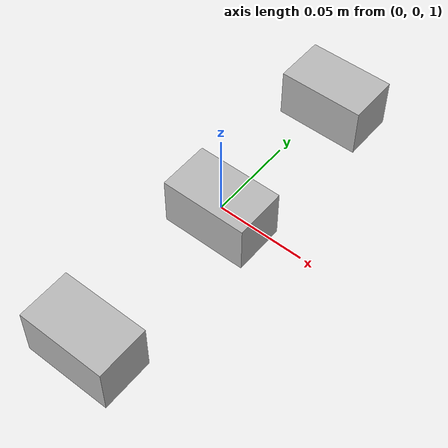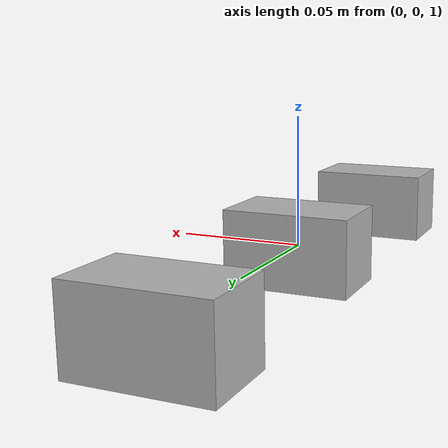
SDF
<?xml version="1.0"?>
<sdf version="1.6">
  <world name="default">
    <!-- GUI -->
		<gui>
			<camera name="gui_camera">
				<pose>-1.0 0.0 2.0 0.0 0.3 0.0</pose>
			</camera>
		</gui>

		<!-- Lighting -->
    <light type="point" name="point_light">
      <pose>-2 0 4 0 -1 0</pose>
      <diffuse>1 1 1 1</diffuse>
      <specular>0.1 0.1 0.1 1</specular>
      <cast_shadows>false</cast_shadows>

      <attenuation>
        <range>1000</range>
        <constant>0.1</constant>
        <linear>0.01</linear>
        <quadratic>0.00</quadratic>
      </attenuation>
    </light>

    <!-- AprilGrid -->
    <include>
      <uri>model://aprilgrid</uri>
      <pose>3.0 0.0 0.5945 1.5708 0.0 -1.5708</pose>
    </include>

    <!-- VI-Sensor -->
    <include>
      <uri>model://visensor</uri>
      <pose>0.0 0.0 1.0 0.0 0.0 0.0</pose>
    </include>
  </world>
</sdf>

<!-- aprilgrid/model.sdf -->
<sdf version="1.6">
  <model name="aprilgrid">
    <allow_auto_disable>true</allow_auto_disable>
    <link name="link">
      <kinematic>true</kinematic>

      <visual name="visual">
        <geometry>
          <mesh>
            <uri>model://aprilgrid/model.obj</uri>
            <scale>1 1 1</scale>
          </mesh>
        </geometry>
      </visual>
    </link>
  </model>
</sdf>

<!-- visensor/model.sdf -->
<sdf version='1.6'>
  <model name="visensor">
    <!-- camera0 -->
    <link name="camera0">
      <gravity>0</gravity>
      <pose>0.0 0.1 0.0 0.0 0.0 0.0</pose>

      <kinematic>true</kinematic>

      <visual name="visual">
        <geometry>
          <box>
            <size>0.05 0.03 0.03</size>
          </box>
        </geometry>
      </visual>

      <sensor name="camera0" type="camera">
        <pose>0.025 0.0 0.0 0.0 0.0 0.0</pose>
        <camera>
          <horizontal_fov>1.047</horizontal_fov>
          <image>
            <width>640</width>
            <height>640</height>
          </image>
          <clip>
            <near>0.01</near>
            <far>200</far>
          </clip>
          <noise>
            <type>gaussian</type>
            <mean>0.0</mean>
            <stddev>0.0</stddev>
          </noise>
        </camera>

        <always_on>1</always_on>
        <update_rate>30</update_rate>
				<visualize>false</visualize>
        <plugin name="proto_camera_plugin" filename="libproto_camera_plugin.so">
          <topic_name>/visensor/camera0</topic_name>
        </plugin>
      </sensor>
    </link>

    <!-- camera1 -->
    <link name="camera1">
      <gravity>0</gravity>
      <pose>0.0 -0.1 0.0 0.0 0.0 0.0</pose>

      <kinematic>true</kinematic>

      <visual name="visual">
        <geometry>
          <box>
            <size>0.05 0.03 0.03</size>
          </box>
        </geometry>
      </visual>

      <sensor name="camera1" type="camera">
        <pose>0.025 0.0 0.0 0.0 0.0 0.0</pose>
        <camera>
          <horizontal_fov>1.047</horizontal_fov>
          <image>
            <width>640</width>
            <height>640</height>
          </image>
          <clip>
            <near>0.01</near>
            <far>200</far>
          </clip>
          <noise>
            <type>gaussian</type>
            <mean>0.0</mean>
            <stddev>0.0</stddev>
          </noise>
        </camera>

        <always_on>1</always_on>
        <update_rate>30</update_rate>
				<visualize>false</visualize>
        <plugin name="proto_camera_plugin" filename="libproto_camera_plugin.so">
          <topic_name>/visensor/camera1</topic_name>
        </plugin>
      </sensor>
    </link>

    <!-- imu0 -->
    <link name="imu0">
      <gravity>0</gravity>
      <pose>0.0 0.0 0.0 0.0 0.0 0.0</pose>

      <kinematic>true</kinematic>

      <visual name="visual">
        <geometry>
          <box>
            <size>0.05 0.03 0.03</size>
          </box>
        </geometry>
      </visual>

      <sensor name="imu_sensor" type="imu">
        <always_on>true</always_on>
        <update_rate>400</update_rate>
            <visualize>false</visualize>
        <topic>__default_topic__</topic>

        <plugin filename="libgazebo_ros_imu_sensor.so" name="imu_plugin">
          <topicName>imu</topicName>
          <bodyName>imu_link</bodyName>
          <updateRateHZ>200.0</updateRateHZ>
          <gaussianNoise>0.0</gaussianNoise>
          <xyzOffset>0 0 0</xyzOffset>
          <rpyOffset>0 0 0</rpyOffset>
          <frameName>imu_link</frameName>
        </plugin>
        <pose>0 0 0 0 0 0</pose>
      </sensor>
    </link>

    <plugin name="proto_pose_plugin" filename="libproto_pose_plugin.so">
      <pose_topic>/visensor/pose</pose_topic>
      <pose_set_topic>/visensor/pose/set</pose_set_topic>
    </plugin>
  </model>
</sdf>
